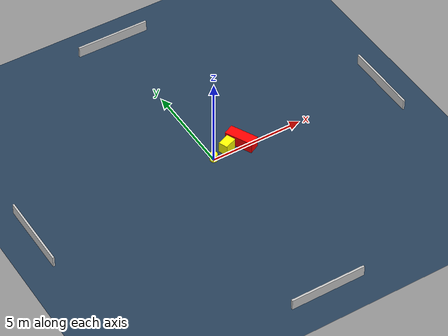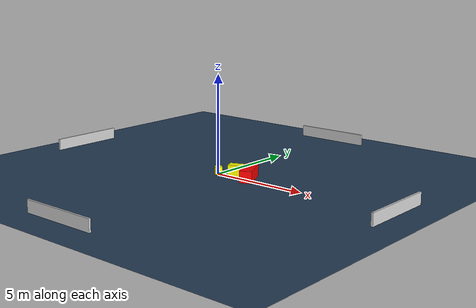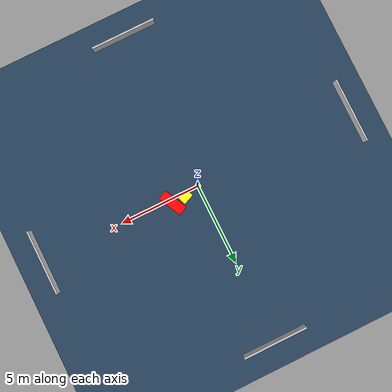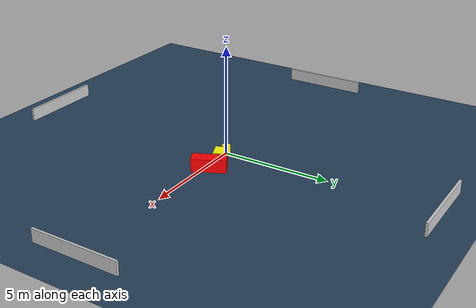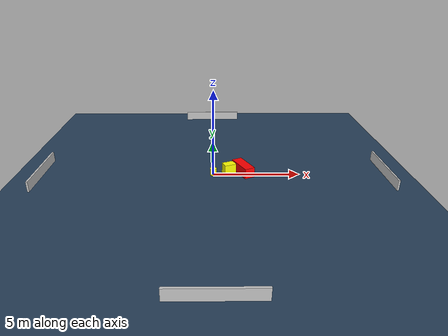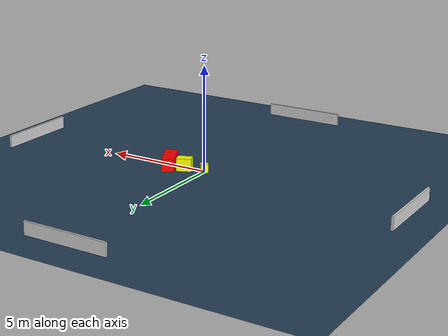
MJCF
<?xml version="1.0" ?>
<mujoco model="generated_environment">
  <option timestep="0.01" integrator="RK4" cone="elliptic"/>
  <default>
    <geom density="1"/>
  </default>
  <asset>
    <texture builtin="gradient" height="3072" name="skybox" rgb1="0.3 0.5 0.7" rgb2="0 0 0" type="skybox" width="512"/>
    <texture builtin="checker" height="300" name="groundplane" rgb1="0.2 0.3 0.4" rgb2="0.1 0.2 0.3" type="2d" width="300"/>
    <material name="groundplane" reflectance="0.2" texrepeat="5 5" texture="groundplane"/>
  </asset>
  <worldbody>
    <light dir="0 0 -1" directional="true" pos="0 0 1.5"/>
    <geom condim="3" friction="0.5 0.005 0.001" material="groundplane" name="floor" pos="0 0 0" size="0 0 0.05" type="plane"/>
    <body name="walls">
      <geom name="wall_1" condim="4" pos="-10.0 0.0 0.3" rgba="0.800000011920929 0.800000011920929 0.800000011920929 1.0" size="0.05 2.0 0.3" type="box"/>
      <geom name="wall_2" condim="4" pos="10.0 0.0 0.3" rgba="0.800000011920929 0.800000011920929 0.800000011920929 1.0" size="0.05 2.0 0.3" type="box"/>
      <geom name="wall_3" condim="4" pos="0.0 -10.0 0.3" rgba="0.800000011920929 0.800000011920929 0.800000011920929 1.0" size="2.0 0.05 0.3" type="box"/>
      <geom name="wall_4" condim="4" pos="0.0 10.0 0.3" rgba="0.800000011920929 0.800000011920929 0.800000011920929 1.0" size="2.0 0.05 0.3" type="box"/>
    </body>
    <body name="robot">
      <joint name="joint_x" type="slide" pos="0 0 0" axis="1 0 0"/>
      <joint name="joint_y" type="slide" pos="0 0 0" axis="0 1 0"/>
      <geom name="robot" type="cylinder" pos="0.0 0.0 0.2" size="0.2 0.2 0.0" mass="5.0" friction="1.0 0.005 0.0001" condim="4" rgba="1.0 1.0 0.0 1.0"/>
    </body>
    <body name="obstacle_1_movable">
      <geom name="obstacle_1_movable" condim="4" pos="0.9211391534664118 0.2510555031818169 0.3" euler="0 0 21.885908234840464" friction="0.0 0.005 0.001" rgba="1.0 1.0 0.0 1.0" size="0.3489730191670536 0.24735039112921123 0.3" type="box" mass="0.1"/>
      <joint type="free"/>
    </body>
    <body name="obstacle_2_static">
      <geom name="obstacle_2_static" condim="4" pos="1.7495056624789396 0.23672253529503934 0.3" euler="0 0 116.44653480168816" friction="0.0 0.005 0.001" rgba="1.0 0.0 0.0 1.0" size="0.7674610508565254 0.3054455562783256 0.3" type="box"/>
    </body>
  </worldbody>
  <actuator>
    <motor name="actuator_x" joint="joint_x" gear="1" ctrlrange="-1 1"/>
    <motor name="actuator_y" joint="joint_y" gear="1" ctrlrange="-1 1"/>
  </actuator>
</mujoco>
